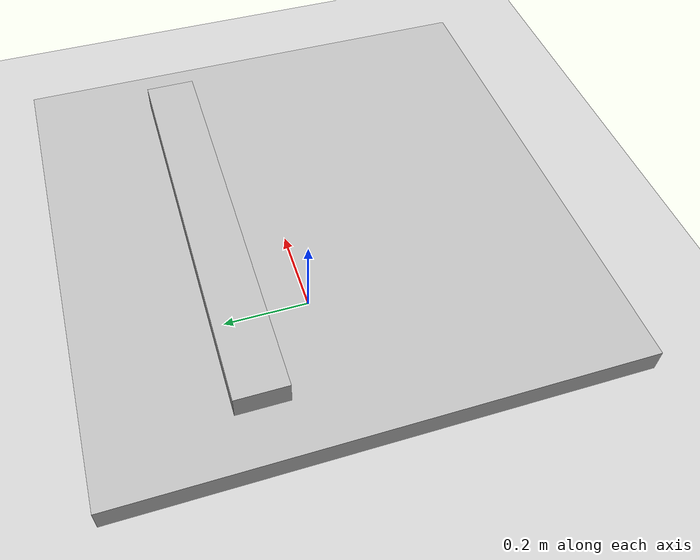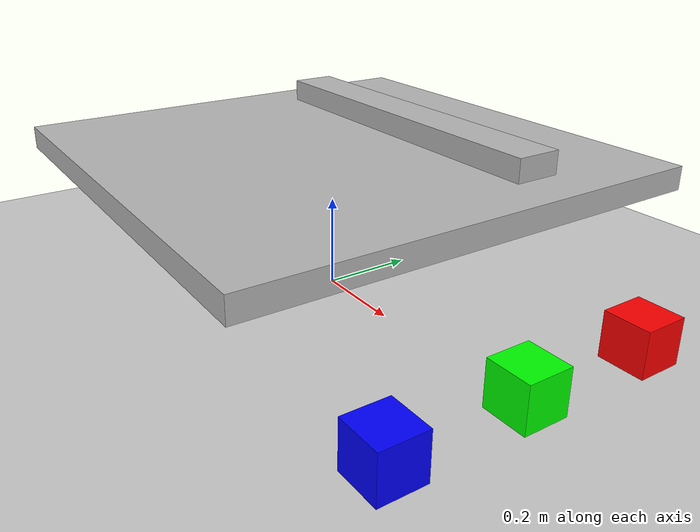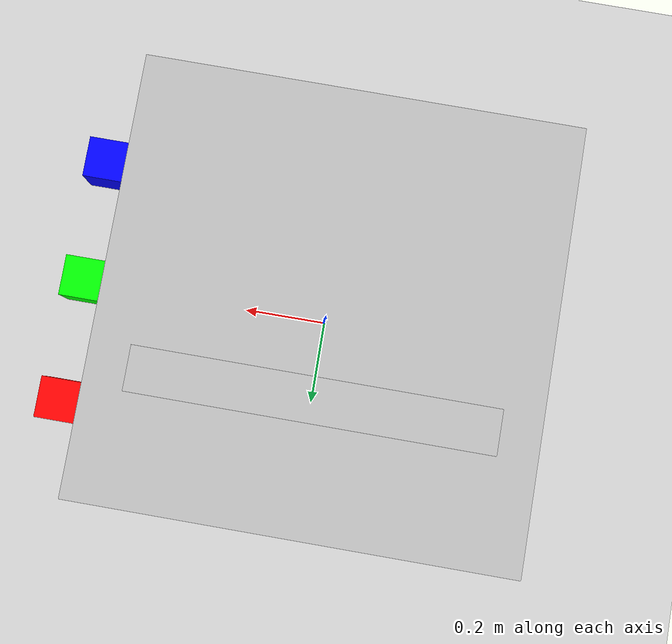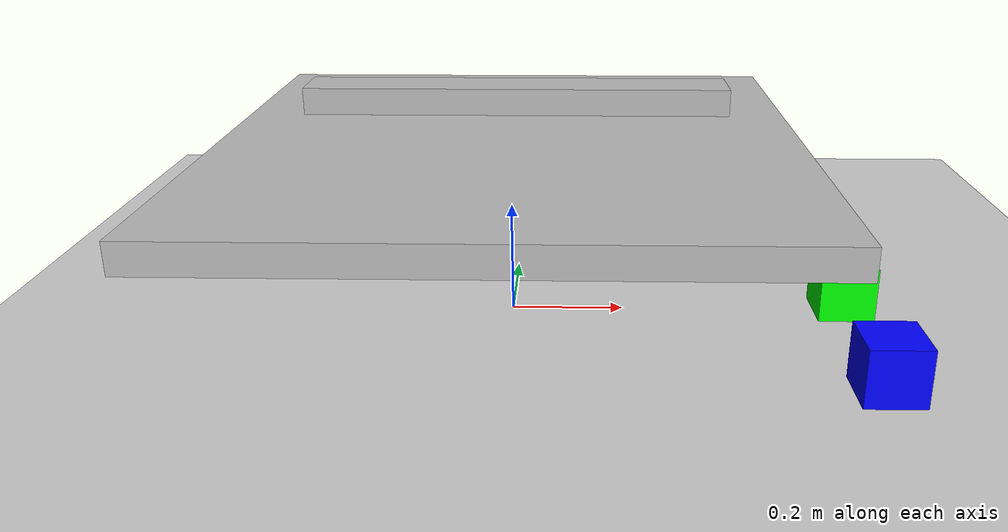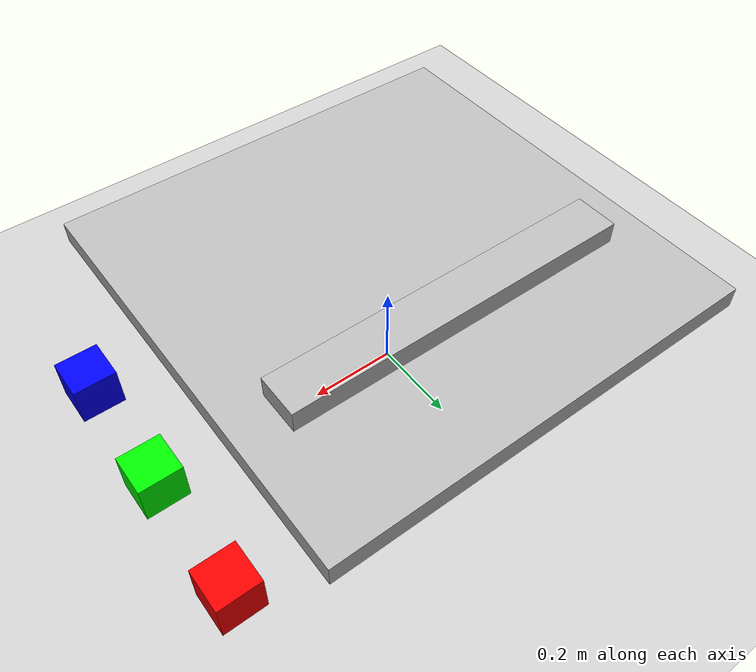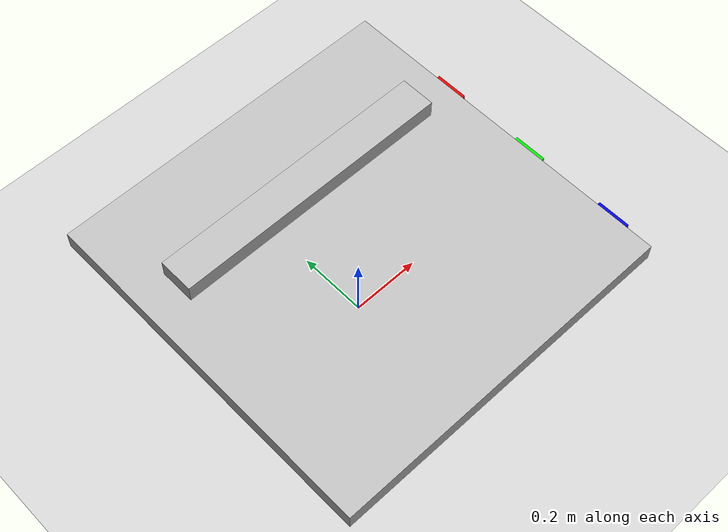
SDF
<?xml version="1.0" ?>
<sdf version="1.6">
  <world name="ufactory_world">
    <include>
      <uri>model://ground_plane</uri>
    </include>
    <include>
      <uri>model://sun</uri>
    </include>

    <!-- Uneven table -->
    <model name="table">
      <link name="table_link">
        <pose>0 0 0.3 0 0 0</pose>
        <collision name="collision">
          <geometry>
            <box>
              <size>1 1 0.05</size>
            </box>
          </geometry>
        </collision>
        <visual name="visual">
          <geometry>
            <box>
              <size>1 1 0.05</size>
            </box>
          </geometry>
        </visual>
      </link>
    </model>

    <!-- U-shaped loop channel -->
    <model name="loop_channel">
      <link name="channel_link">
        <pose>0 0.2 0.35 0 0 0</pose>
        <collision name="collision">
          <geometry>
            <box>
              <size>0.8 0.1 0.05</size>
            </box>
          </geometry>
        </collision>
        <visual name="visual">
          <geometry>
            <box>
              <size>0.8 0.1 0.05</size>
            </box>
          </geometry>
        </visual>
      </link>
    </model>

    <!-- Three bins as colored boxes -->
    <model name="bin_circle">
      <pose>0.6 0.3 0.05 0 0 0</pose>
      <link name="bin_circle_link">
        <collision name="collision">
          <geometry>
            <box>
              <size>0.1 0.1 0.1</size>
            </box>
          </geometry>
        </collision>
        <visual name="visual">
          <geometry>
            <box>
              <size>0.1 0.1 0.1</size>
            </box>
          </geometry>
          <material>
            <ambient>1 0 0 1</ambient>
            <diffuse>1 0 0 1</diffuse>
          </material>
        </visual>
      </link>
    </model>
    <model name="bin_square">
      <pose>0.6 0.0 0.05 0 0 0</pose>
      <link name="bin_square_link">
        <collision name="collision">
          <geometry>
            <box>
              <size>0.1 0.1 0.1</size>
            </box>
          </geometry>
        </collision>
        <visual name="visual">
          <geometry>
            <box>
              <size>0.1 0.1 0.1</size>
            </box>
          </geometry>
          <material>
            <ambient>0 1 0 1</ambient>
            <diffuse>0 1 0 1</diffuse>
          </material>
        </visual>
      </link>
    </model>
    <model name="bin_triangle">
      <pose>0.6 -0.3 0.05 0 0 0</pose>
      <link name="bin_triangle_link">
        <collision name="collision">
          <geometry>
            <box>
              <size>0.1 0.1 0.1</size>
            </box>
          </geometry>
        </collision>
        <visual name="visual">
          <geometry>
            <box>
              <size>0.1 0.1 0.1</size>
            </box>
          </geometry>
          <material>
            <ambient>0 0 1 1</ambient>
            <diffuse>0 0 1 1</diffuse>
          </material>
        </visual>
      </link>
    </model>
  </world>
</sdf>
